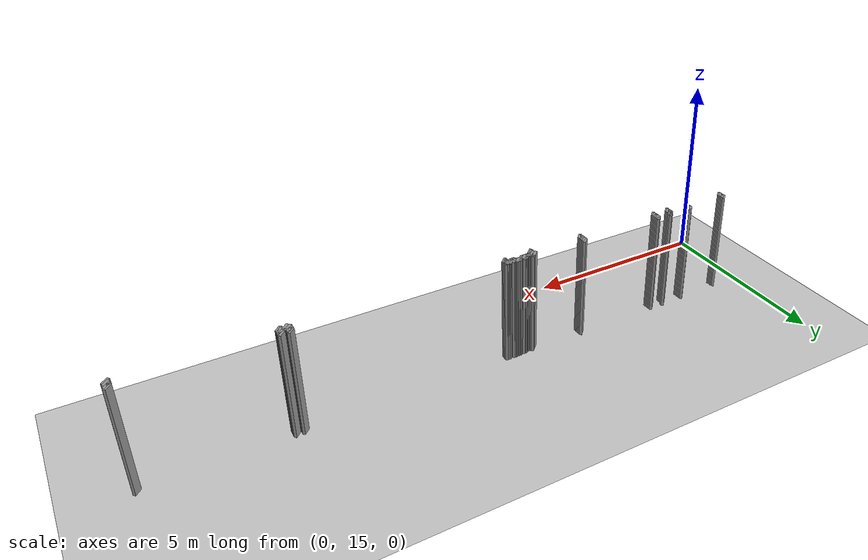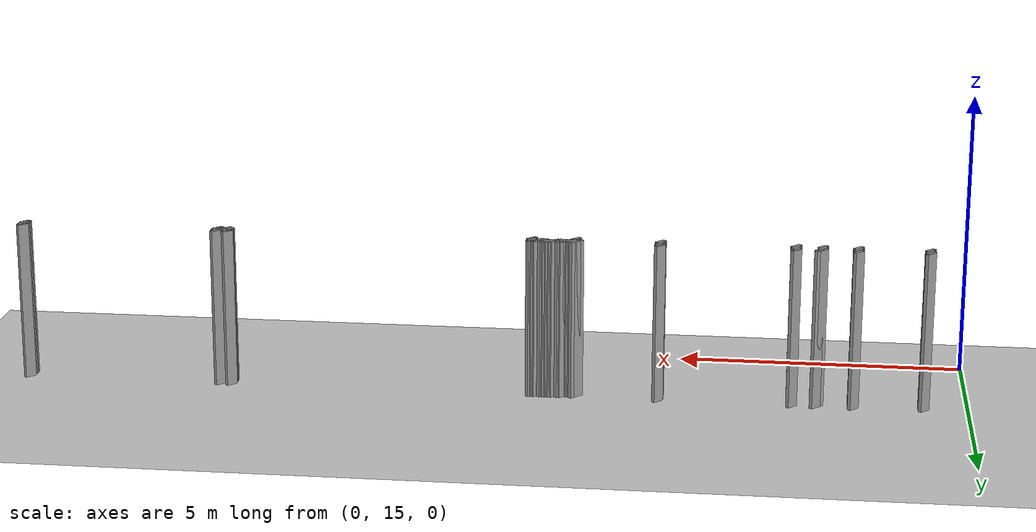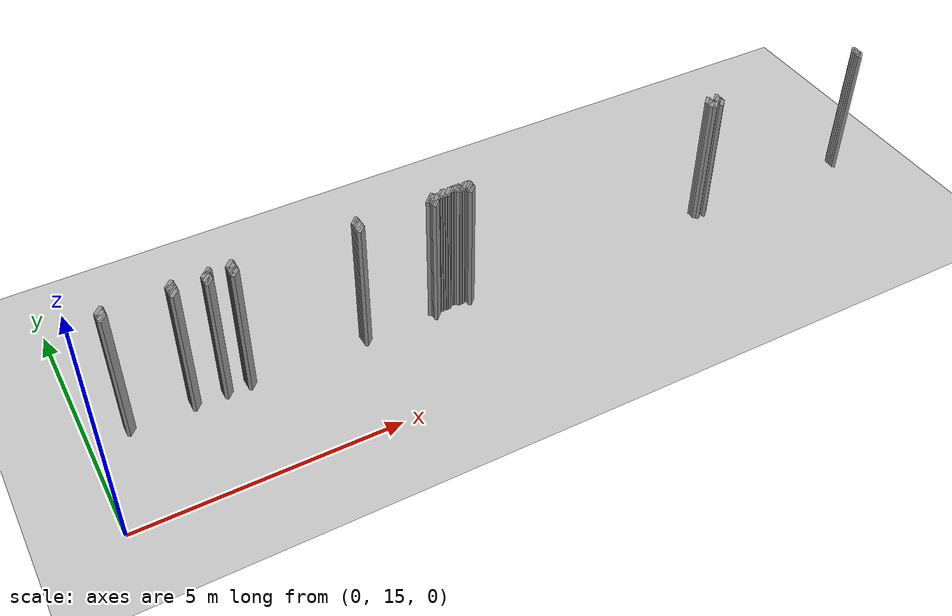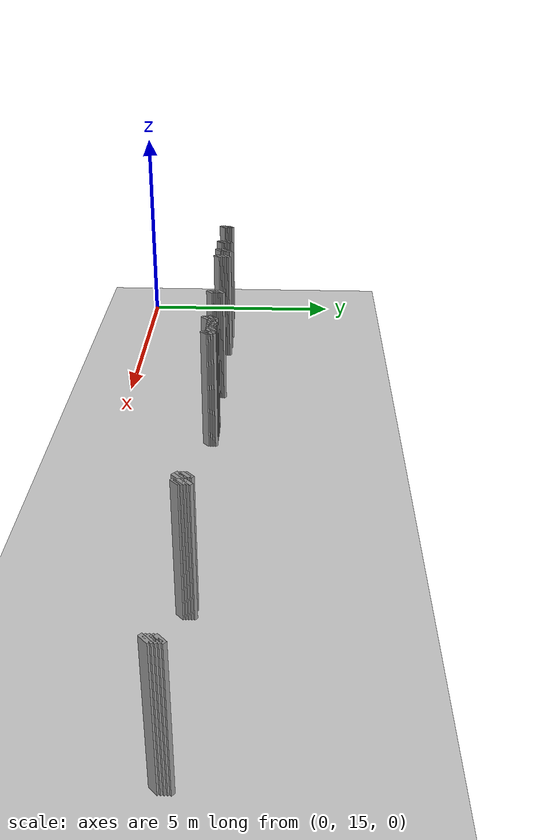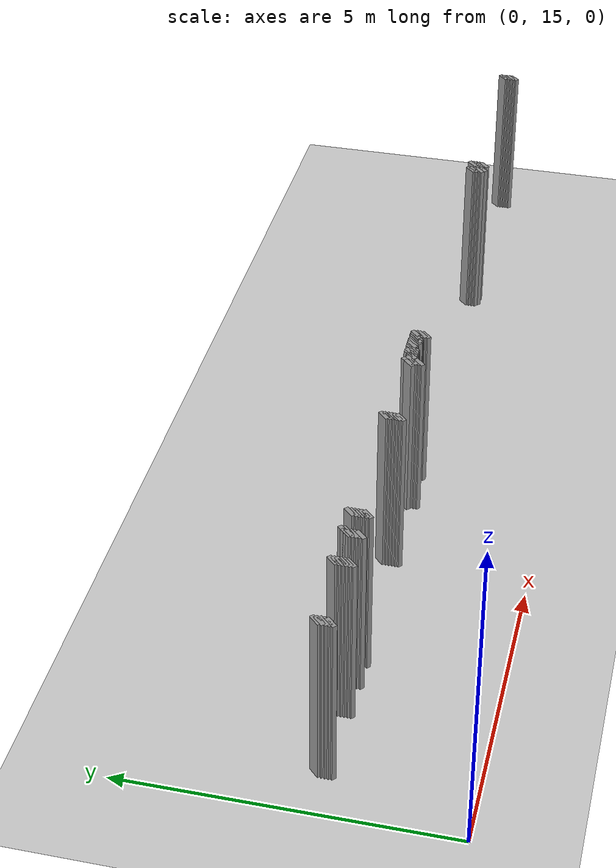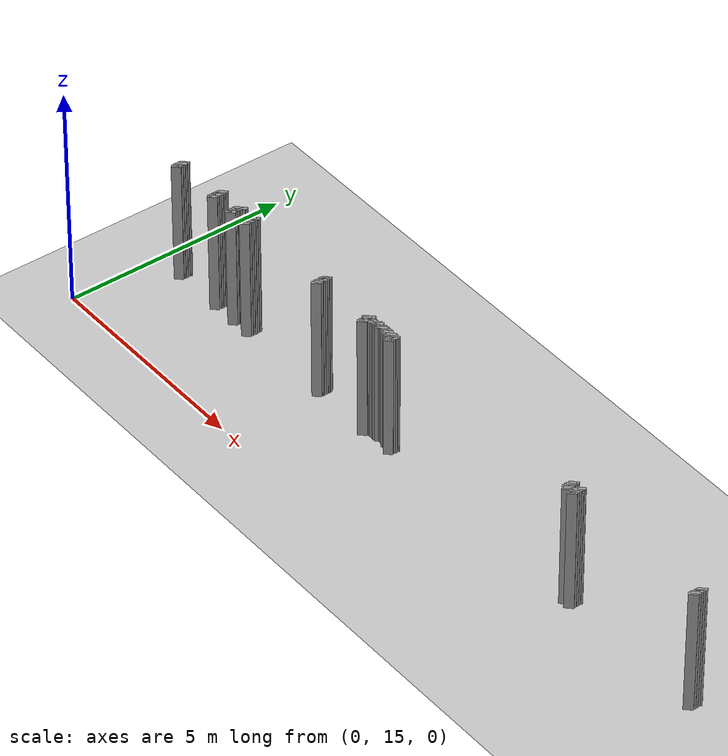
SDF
<sdf version="1.5">
 <world name="default">
  <include><uri>model://ground_plane</uri></include>
  <include><uri>model://sun</uri></include>
  <model name="grey_wall_298">
   <static>1</static>
   <link name="link">
    <pose>1.9500000000000002 17.3  1.4 0 0 -0.7853981633974216</pose>
    <collision name="collision">
     <geometry><box><size>0.07071067811865261 .2  2.8</size></box></geometry>
    </collision>
    <visual name="visual">
     <cast_shadows>0</cast_shadows>
     <geometry><box><size>0.07071067811865261 .2  2.8</size></box></geometry>
     <material>
      <script>
       <uri>model://grey_wall/materials/scripts</uri>
       <uri>model://grey_wall/materials/textures</uri>
       <name>vrc/grey_wall</name>
      </script>
     </material>
    </visual>
   </link>
  </model>
  <model name="grey_wall_299">
   <static>1</static>
   <link name="link">
    <pose>2.6 17.3  1.4 0 0 -0.7853981633974216</pose>
    <collision name="collision">
     <geometry><box><size>0.07071067811865261 .2  2.8</size></box></geometry>
    </collision>
    <visual name="visual">
     <cast_shadows>0</cast_shadows>
     <geometry><box><size>0.07071067811865261 .2  2.8</size></box></geometry>
     <material>
      <script>
       <uri>model://grey_wall/materials/scripts</uri>
       <uri>model://grey_wall/materials/textures</uri>
       <name>vrc/grey_wall</name>
      </script>
     </material>
    </visual>
   </link>
  </model>
  <model name="grey_wall_300">
   <static>1</static>
   <link name="link">
    <pose>3.0 17.3  1.4 0 0 -0.7853981633974216</pose>
    <collision name="collision">
     <geometry><box><size>0.07071067811865261 .2  2.8</size></box></geometry>
    </collision>
    <visual name="visual">
     <cast_shadows>0</cast_shadows>
     <geometry><box><size>0.07071067811865261 .2  2.8</size></box></geometry>
     <material>
      <script>
       <uri>model://grey_wall/materials/scripts</uri>
       <uri>model://grey_wall/materials/textures</uri>
       <name>vrc/grey_wall</name>
      </script>
     </material>
    </visual>
   </link>
  </model>
  <model name="grey_wall_301">
   <static>1</static>
   <link name="link">
    <pose>5.300000000000001 17.3  1.4 0 0 -0.7853981633974128</pose>
    <collision name="collision">
     <geometry><box><size>0.07071067811865325 .2  2.8</size></box></geometry>
    </collision>
    <visual name="visual">
     <cast_shadows>0</cast_shadows>
     <geometry><box><size>0.07071067811865325 .2  2.8</size></box></geometry>
     <material>
      <script>
       <uri>model://grey_wall/materials/scripts</uri>
       <uri>model://grey_wall/materials/textures</uri>
       <name>vrc/grey_wall</name>
      </script>
     </material>
    </visual>
   </link>
  </model>
  <model name="grey_wall_302">
   <static>1</static>
   <link name="link">
    <pose>12.8 17.3  1.4 0 0 -0.7853981633974128</pose>
    <collision name="collision">
     <geometry><box><size>0.07071067811865325 .2  2.8</size></box></geometry>
    </collision>
    <visual name="visual">
     <cast_shadows>0</cast_shadows>
     <geometry><box><size>0.07071067811865325 .2  2.8</size></box></geometry>
     <material>
      <script>
       <uri>model://grey_wall/materials/scripts</uri>
       <uri>model://grey_wall/materials/textures</uri>
       <name>vrc/grey_wall</name>
      </script>
     </material>
    </visual>
   </link>
  </model>
  <model name="grey_wall_303">
   <static>1</static>
   <link name="link">
    <pose>13.0 17.3  1.4 0 0 -0.7853981633974128</pose>
    <collision name="collision">
     <geometry><box><size>0.07071067811865325 .2  2.8</size></box></geometry>
    </collision>
    <visual name="visual">
     <cast_shadows>0</cast_shadows>
     <geometry><box><size>0.07071067811865325 .2  2.8</size></box></geometry>
     <material>
      <script>
       <uri>model://grey_wall/materials/scripts</uri>
       <uri>model://grey_wall/materials/textures</uri>
       <name>vrc/grey_wall</name>
      </script>
     </material>
    </visual>
   </link>
  </model>
  <model name="grey_wall_304">
   <static>1</static>
   <link name="link">
    <pose>16.45 17.3  1.4 0 0 -0.7853981633974483</pose>
    <collision name="collision">
     <geometry><box><size>0.07071067811865074 .2  2.8</size></box></geometry>
    </collision>
    <visual name="visual">
     <cast_shadows>0</cast_shadows>
     <geometry><box><size>0.07071067811865074 .2  2.8</size></box></geometry>
     <material>
      <script>
       <uri>model://grey_wall/materials/scripts</uri>
       <uri>model://grey_wall/materials/textures</uri>
       <name>vrc/grey_wall</name>
      </script>
     </material>
    </visual>
   </link>
  </model>
  <model name="grey_wall_305">
   <static>1</static>
   <link name="link">
    <pose>0.75 17.25  1.4 0 0 -0.7853981633974194</pose>
    <collision name="collision">
     <geometry><box><size>0.07071067811865277 .2  2.8</size></box></geometry>
    </collision>
    <visual name="visual">
     <cast_shadows>0</cast_shadows>
     <geometry><box><size>0.07071067811865277 .2  2.8</size></box></geometry>
     <material>
      <script>
       <uri>model://grey_wall/materials/scripts</uri>
       <uri>model://grey_wall/materials/textures</uri>
       <name>vrc/grey_wall</name>
      </script>
     </material>
    </visual>
   </link>
  </model>
  <model name="grey_wall_306">
   <static>1</static>
   <link name="link">
    <pose>1.9500000000000002 17.25  1.4 0 0 -0.7853981633974216</pose>
    <collision name="collision">
     <geometry><box><size>0.07071067811865261 .2  2.8</size></box></geometry>
    </collision>
    <visual name="visual">
     <cast_shadows>0</cast_shadows>
     <geometry><box><size>0.07071067811865261 .2  2.8</size></box></geometry>
     <material>
      <script>
       <uri>model://grey_wall/materials/scripts</uri>
       <uri>model://grey_wall/materials/textures</uri>
       <name>vrc/grey_wall</name>
      </script>
     </material>
    </visual>
   </link>
  </model>
  <model name="grey_wall_307">
   <static>1</static>
   <link name="link">
    <pose>2.5500000000000003 17.25  1.4 0 0 -0.7853981633974216</pose>
    <collision name="collision">
     <geometry><box><size>0.07071067811865261 .2  2.8</size></box></geometry>
    </collision>
    <visual name="visual">
     <cast_shadows>0</cast_shadows>
     <geometry><box><size>0.07071067811865261 .2  2.8</size></box></geometry>
     <material>
      <script>
       <uri>model://grey_wall/materials/scripts</uri>
       <uri>model://grey_wall/materials/textures</uri>
       <name>vrc/grey_wall</name>
      </script>
     </material>
    </visual>
   </link>
  </model>
  <model name="grey_wall_308">
   <static>1</static>
   <link name="link">
    <pose>2.6 17.25  1.4 0 0 -0.7853981633974216</pose>
    <collision name="collision">
     <geometry><box><size>0.07071067811865261 .2  2.8</size></box></geometry>
    </collision>
    <visual name="visual">
     <cast_shadows>0</cast_shadows>
     <geometry><box><size>0.07071067811865261 .2  2.8</size></box></geometry>
     <material>
      <script>
       <uri>model://grey_wall/materials/scripts</uri>
       <uri>model://grey_wall/materials/textures</uri>
       <name>vrc/grey_wall</name>
      </script>
     </material>
    </visual>
   </link>
  </model>
  <model name="grey_wall_309">
   <static>1</static>
   <link name="link">
    <pose>3.0 17.25  1.4 0 0 -0.7853981633974216</pose>
    <collision name="collision">
     <geometry><box><size>0.07071067811865261 .2  2.8</size></box></geometry>
    </collision>
    <visual name="visual">
     <cast_shadows>0</cast_shadows>
     <geometry><box><size>0.07071067811865261 .2  2.8</size></box></geometry>
     <material>
      <script>
       <uri>model://grey_wall/materials/scripts</uri>
       <uri>model://grey_wall/materials/textures</uri>
       <name>vrc/grey_wall</name>
      </script>
     </material>
    </visual>
   </link>
  </model>
  <model name="grey_wall_310">
   <static>1</static>
   <link name="link">
    <pose>5.300000000000001 17.25  1.4 0 0 -0.7853981633974128</pose>
    <collision name="collision">
     <geometry><box><size>0.07071067811865325 .2  2.8</size></box></geometry>
    </collision>
    <visual name="visual">
     <cast_shadows>0</cast_shadows>
     <geometry><box><size>0.07071067811865325 .2  2.8</size></box></geometry>
     <material>
      <script>
       <uri>model://grey_wall/materials/scripts</uri>
       <uri>model://grey_wall/materials/textures</uri>
       <name>vrc/grey_wall</name>
      </script>
     </material>
    </visual>
   </link>
  </model>
  <model name="grey_wall_311">
   <static>1</static>
   <link name="link">
    <pose>6.75 17.25  1.4 0 0 -0.7853981633974128</pose>
    <collision name="collision">
     <geometry><box><size>0.07071067811865325 .2  2.8</size></box></geometry>
    </collision>
    <visual name="visual">
     <cast_shadows>0</cast_shadows>
     <geometry><box><size>0.07071067811865325 .2  2.8</size></box></geometry>
     <material>
      <script>
       <uri>model://grey_wall/materials/scripts</uri>
       <uri>model://grey_wall/materials/textures</uri>
       <name>vrc/grey_wall</name>
      </script>
     </material>
    </visual>
   </link>
  </model>
  <model name="grey_wall_312">
   <static>1</static>
   <link name="link">
    <pose>6.95 17.25  1.4 0 0 -0.7853981633974128</pose>
    <collision name="collision">
     <geometry><box><size>0.07071067811865325 .2  2.8</size></box></geometry>
    </collision>
    <visual name="visual">
     <cast_shadows>0</cast_shadows>
     <geometry><box><size>0.07071067811865325 .2  2.8</size></box></geometry>
     <material>
      <script>
       <uri>model://grey_wall/materials/scripts</uri>
       <uri>model://grey_wall/materials/textures</uri>
       <name>vrc/grey_wall</name>
      </script>
     </material>
    </visual>
   </link>
  </model>
  <model name="grey_wall_313">
   <static>1</static>
   <link name="link">
    <pose>7.0 17.25  1.4 0 0 -0.7853981633974128</pose>
    <collision name="collision">
     <geometry><box><size>0.07071067811865325 .2  2.8</size></box></geometry>
    </collision>
    <visual name="visual">
     <cast_shadows>0</cast_shadows>
     <geometry><box><size>0.07071067811865325 .2  2.8</size></box></geometry>
     <material>
      <script>
       <uri>model://grey_wall/materials/scripts</uri>
       <uri>model://grey_wall/materials/textures</uri>
       <name>vrc/grey_wall</name>
      </script>
     </material>
    </visual>
   </link>
  </model>
  <model name="grey_wall_314">
   <static>1</static>
   <link name="link">
    <pose>7.1000000000000005 17.25  1.4 0 0 -0.7853981633974128</pose>
    <collision name="collision">
     <geometry><box><size>0.07071067811865325 .2  2.8</size></box></geometry>
    </collision>
    <visual name="visual">
     <cast_shadows>0</cast_shadows>
     <geometry><box><size>0.07071067811865325 .2  2.8</size></box></geometry>
     <material>
      <script>
       <uri>model://grey_wall/materials/scripts</uri>
       <uri>model://grey_wall/materials/textures</uri>
       <name>vrc/grey_wall</name>
      </script>
     </material>
    </visual>
   </link>
  </model>
  <model name="grey_wall_315">
   <static>1</static>
   <link name="link">
    <pose>7.15 17.25  1.4 0 0 -0.7853981633974128</pose>
    <collision name="collision">
     <geometry><box><size>0.07071067811865325 .2  2.8</size></box></geometry>
    </collision>
    <visual name="visual">
     <cast_shadows>0</cast_shadows>
     <geometry><box><size>0.07071067811865325 .2  2.8</size></box></geometry>
     <material>
      <script>
       <uri>model://grey_wall/materials/scripts</uri>
       <uri>model://grey_wall/materials/textures</uri>
       <name>vrc/grey_wall</name>
      </script>
     </material>
    </visual>
   </link>
  </model>
  <model name="grey_wall_316">
   <static>1</static>
   <link name="link">
    <pose>7.2 17.25  1.4 0 0 -0.7853981633974128</pose>
    <collision name="collision">
     <geometry><box><size>0.07071067811865325 .2  2.8</size></box></geometry>
    </collision>
    <visual name="visual">
     <cast_shadows>0</cast_shadows>
     <geometry><box><size>0.07071067811865325 .2  2.8</size></box></geometry>
     <material>
      <script>
       <uri>model://grey_wall/materials/scripts</uri>
       <uri>model://grey_wall/materials/textures</uri>
       <name>vrc/grey_wall</name>
      </script>
     </material>
    </visual>
   </link>
  </model>
  <model name="grey_wall_317">
   <static>1</static>
   <link name="link">
    <pose>7.25 17.25  1.4 0 0 -0.7853981633974128</pose>
    <collision name="collision">
     <geometry><box><size>0.07071067811865325 .2  2.8</size></box></geometry>
    </collision>
    <visual name="visual">
     <cast_shadows>0</cast_shadows>
     <geometry><box><size>0.07071067811865325 .2  2.8</size></box></geometry>
     <material>
      <script>
       <uri>model://grey_wall/materials/scripts</uri>
       <uri>model://grey_wall/materials/textures</uri>
       <name>vrc/grey_wall</name>
      </script>
     </material>
    </visual>
   </link>
  </model>
  <model name="grey_wall_318">
   <static>1</static>
   <link name="link">
    <pose>7.300000000000001 17.25  1.4 0 0 -0.7853981633974128</pose>
    <collision name="collision">
     <geometry><box><size>0.07071067811865325 .2  2.8</size></box></geometry>
    </collision>
    <visual name="visual">
     <cast_shadows>0</cast_shadows>
     <geometry><box><size>0.07071067811865325 .2  2.8</size></box></geometry>
     <material>
      <script>
       <uri>model://grey_wall/materials/scripts</uri>
       <uri>model://grey_wall/materials/textures</uri>
       <name>vrc/grey_wall</name>
      </script>
     </material>
    </visual>
   </link>
  </model>
  <model name="grey_wall_319">
   <static>1</static>
   <link name="link">
    <pose>7.4 17.25  1.4 0 0 -0.7853981633974128</pose>
    <collision name="collision">
     <geometry><box><size>0.07071067811865325 .2  2.8</size></box></geometry>
    </collision>
    <visual name="visual">
     <cast_shadows>0</cast_shadows>
     <geometry><box><size>0.07071067811865325 .2  2.8</size></box></geometry>
     <material>
      <script>
       <uri>model://grey_wall/materials/scripts</uri>
       <uri>model://grey_wall/materials/textures</uri>
       <name>vrc/grey_wall</name>
      </script>
     </material>
    </visual>
   </link>
  </model>
  <model name="grey_wall_320">
   <static>1</static>
   <link name="link">
    <pose>7.45 17.25  1.4 0 0 -0.7853981633974128</pose>
    <collision name="collision">
     <geometry><box><size>0.07071067811865325 .2  2.8</size></box></geometry>
    </collision>
    <visual name="visual">
     <cast_shadows>0</cast_shadows>
     <geometry><box><size>0.07071067811865325 .2  2.8</size></box></geometry>
     <material>
      <script>
       <uri>model://grey_wall/materials/scripts</uri>
       <uri>model://grey_wall/materials/textures</uri>
       <name>vrc/grey_wall</name>
      </script>
     </material>
    </visual>
   </link>
  </model>
  <model name="grey_wall_321">
   <static>1</static>
   <link name="link">
    <pose>7.5 17.25  1.4 0 0 -0.7853981633974128</pose>
    <collision name="collision">
     <geometry><box><size>0.07071067811865325 .2  2.8</size></box></geometry>
    </collision>
    <visual name="visual">
     <cast_shadows>0</cast_shadows>
     <geometry><box><size>0.07071067811865325 .2  2.8</size></box></geometry>
     <material>
      <script>
       <uri>model://grey_wall/materials/scripts</uri>
       <uri>model://grey_wall/materials/textures</uri>
       <name>vrc/grey_wall</name>
      </script>
     </material>
    </visual>
   </link>
  </model>
  <model name="grey_wall_322">
   <static>1</static>
   <link name="link">
    <pose>12.8 17.25  1.4 0 0 -0.7853981633974128</pose>
    <collision name="collision">
     <geometry><box><size>0.07071067811865325 .2  2.8</size></box></geometry>
    </collision>
    <visual name="visual">
     <cast_shadows>0</cast_shadows>
     <geometry><box><size>0.07071067811865325 .2  2.8</size></box></geometry>
     <material>
      <script>
       <uri>model://grey_wall/materials/scripts</uri>
       <uri>model://grey_wall/materials/textures</uri>
       <name>vrc/grey_wall</name>
      </script>
     </material>
    </visual>
   </link>
  </model>
  <model name="grey_wall_323">
   <static>1</static>
   <link name="link">
    <pose>13.0 17.25  1.4 0 0 -0.7853981633974128</pose>
    <collision name="collision">
     <geometry><box><size>0.07071067811865325 .2  2.8</size></box></geometry>
    </collision>
    <visual name="visual">
     <cast_shadows>0</cast_shadows>
     <geometry><box><size>0.07071067811865325 .2  2.8</size></box></geometry>
     <material>
      <script>
       <uri>model://grey_wall/materials/scripts</uri>
       <uri>model://grey_wall/materials/textures</uri>
       <name>vrc/grey_wall</name>
      </script>
     </material>
    </visual>
   </link>
  </model>
  <model name="grey_wall_324">
   <static>1</static>
   <link name="link">
    <pose>16.45 17.25  1.4 0 0 -0.7853981633974483</pose>
    <collision name="collision">
     <geometry><box><size>0.07071067811865074 .2  2.8</size></box></geometry>
    </collision>
    <visual name="visual">
     <cast_shadows>0</cast_shadows>
     <geometry><box><size>0.07071067811865074 .2  2.8</size></box></geometry>
     <material>
      <script>
       <uri>model://grey_wall/materials/scripts</uri>
       <uri>model://grey_wall/materials/textures</uri>
       <name>vrc/grey_wall</name>
      </script>
     </material>
    </visual>
   </link>
  </model>
  <model name="grey_wall_325">
   <static>1</static>
   <link name="link">
    <pose>0.75 17.2  1.4 0 0 -0.7853981633974194</pose>
    <collision name="collision">
     <geometry><box><size>0.07071067811865277 .2  2.8</size></box></geometry>
    </collision>
    <visual name="visual">
     <cast_shadows>0</cast_shadows>
     <geometry><box><size>0.07071067811865277 .2  2.8</size></box></geometry>
     <material>
      <script>
       <uri>model://grey_wall/materials/scripts</uri>
       <uri>model://grey_wall/materials/textures</uri>
       <name>vrc/grey_wall</name>
      </script>
     </material>
    </visual>
   </link>
  </model>
  <model name="grey_wall_326">
   <static>1</static>
   <link name="link">
    <pose>1.9500000000000002 17.2  1.4 0 0 -0.7853981633974216</pose>
    <collision name="collision">
     <geometry><box><size>0.07071067811865261 .2  2.8</size></box></geometry>
    </collision>
    <visual name="visual">
     <cast_shadows>0</cast_shadows>
     <geometry><box><size>0.07071067811865261 .2  2.8</size></box></geometry>
     <material>
      <script>
       <uri>model://grey_wall/materials/scripts</uri>
       <uri>model://grey_wall/materials/textures</uri>
       <name>vrc/grey_wall</name>
      </script>
     </material>
    </visual>
   </link>
  </model>
  <model name="grey_wall_327">
   <static>1</static>
   <link name="link">
    <pose>2.5500000000000003 17.2  1.4 0 0 -0.7853981633974216</pose>
    <collision name="collision">
     <geometry><box><size>0.07071067811865261 .2  2.8</size></box></geometry>
    </collision>
    <visual name="visual">
     <cast_shadows>0</cast_shadows>
     <geometry><box><size>0.07071067811865261 .2  2.8</size></box></geometry>
     <material>
      <script>
       <uri>model://grey_wall/materials/scripts</uri>
       <uri>model://grey_wall/materials/textures</uri>
       <name>vrc/grey_wall</name>
      </script>
     </material>
    </visual>
   </link>
  </model>
  <model name="grey_wall_328">
   <static>1</static>
   <link name="link">
    <pose>3.0 17.2  1.4 0 0 -0.7853981633974216</pose>
    <collision name="collision">
     <geometry><box><size>0.07071067811865261 .2  2.8</size></box></geometry>
    </collision>
    <visual name="visual">
     <cast_shadows>0</cast_shadows>
     <geometry><box><size>0.07071067811865261 .2  2.8</size></box></geometry>
     <material>
      <script>
       <uri>model://grey_wall/materials/scripts</uri>
       <uri>model://grey_wall/materials/textures</uri>
       <name>vrc/grey_wall</name>
      </script>
     </material>
    </visual>
   </link>
  </model>
  <model name="grey_wall_329">
   <static>1</static>
   <link name="link">
    <pose>5.300000000000001 17.2  1.4 0 0 -0.7853981633974128</pose>
    <collision name="collision">
     <geometry><box><size>0.07071067811865325 .2  2.8</size></box></geometry>
    </collision>
    <visual name="visual">
     <cast_shadows>0</cast_shadows>
     <geometry><box><size>0.07071067811865325 .2  2.8</size></box></geometry>
     <material>
      <script>
       <uri>model://grey_wall/materials/scripts</uri>
       <uri>model://grey_wall/materials/textures</uri>
       <name>vrc/grey_wall</name>
      </script>
     </material>
    </visual>
   </link>
  </model>
  <model name="grey_wall_330">
   <static>1</static>
   <link name="link">
    <pose>6.7 17.2  1.4 0 0 -0.7853981633974128</pose>
    <collision name="collision">
     <geometry><box><size>0.07071067811865325 .2  2.8</size></box></geometry>
    </collision>
    <visual name="visual">
     <cast_shadows>0</cast_shadows>
     <geometry><box><size>0.07071067811865325 .2  2.8</size></box></geometry>
     <material>
      <script>
       <uri>model://grey_wall/materials/scripts</uri>
       <uri>model://grey_wall/materials/textures</uri>
       <name>vrc/grey_wall</name>
      </script>
     </material>
    </visual>
   </link>
  </model>
  <model name="grey_wall_331">
   <static>1</static>
   <link name="link">
    <pose>6.75 17.2  1.4 0 0 -0.7853981633974128</pose>
    <collision name="collision">
     <geometry><box><size>0.07071067811865325 .2  2.8</size></box></geometry>
    </collision>
    <visual name="visual">
     <cast_shadows>0</cast_shadows>
     <geometry><box><size>0.07071067811865325 .2  2.8</size></box></geometry>
     <material>
      <script>
       <uri>model://grey_wall/materials/scripts</uri>
       <uri>model://grey_wall/materials/textures</uri>
       <name>vrc/grey_wall</name>
      </script>
     </material>
    </visual>
   </link>
  </model>
  <model name="grey_wall_332">
   <static>1</static>
   <link name="link">
    <pose>6.800000000000001 17.2  1.4 0 0 -0.7853981633974128</pose>
    <collision name="collision">
     <geometry><box><size>0.07071067811865325 .2  2.8</size></box></geometry>
    </collision>
    <visual name="visual">
     <cast_shadows>0</cast_shadows>
     <geometry><box><size>0.07071067811865325 .2  2.8</size></box></geometry>
     <material>
      <script>
       <uri>model://grey_wall/materials/scripts</uri>
       <uri>model://grey_wall/materials/textures</uri>
       <name>vrc/grey_wall</name>
      </script>
     </material>
    </visual>
   </link>
  </model>
  <model name="grey_wall_333">
   <static>1</static>
   <link name="link">
    <pose>6.8500000000000005 17.2  1.4 0 0 -0.7853981633974128</pose>
    <collision name="collision">
     <geometry><box><size>0.07071067811865325 .2  2.8</size></box></geometry>
    </collision>
    <visual name="visual">
     <cast_shadows>0</cast_shadows>
     <geometry><box><size>0.07071067811865325 .2  2.8</size></box></geometry>
     <material>
      <script>
       <uri>model://grey_wall/materials/scripts</uri>
       <uri>model://grey_wall/materials/textures</uri>
       <name>vrc/grey_wall</name>
      </script>
     </material>
    </visual>
   </link>
  </model>
  <model name="grey_wall_334">
   <static>1</static>
   <link name="link">
    <pose>6.9 17.2  1.4 0 0 -0.7853981633974128</pose>
    <collision name="collision">
     <geometry><box><size>0.07071067811865325 .2  2.8</size></box></geometry>
    </collision>
    <visual name="visual">
     <cast_shadows>0</cast_shadows>
     <geometry><box><size>0.07071067811865325 .2  2.8</size></box></geometry>
     <material>
      <script>
       <uri>model://grey_wall/materials/scripts</uri>
       <uri>model://grey_wall/materials/textures</uri>
       <name>vrc/grey_wall</name>
      </script>
     </material>
    </visual>
   </link>
  </model>
  <model name="grey_wall_335">
   <static>1</static>
   <link name="link">
    <pose>6.95 17.2  1.4 0 0 -0.7853981633974128</pose>
    <collision name="collision">
     <geometry><box><size>0.07071067811865325 .2  2.8</size></box></geometry>
    </collision>
    <visual name="visual">
     <cast_shadows>0</cast_shadows>
     <geometry><box><size>0.07071067811865325 .2  2.8</size></box></geometry>
     <material>
      <script>
       <uri>model://grey_wall/materials/scripts</uri>
       <uri>model://grey_wall/materials/textures</uri>
       <name>vrc/grey_wall</name>
      </script>
     </material>
    </visual>
   </link>
  </model>
  <model name="grey_wall_336">
   <static>1</static>
   <link name="link">
    <pose>7.0 17.2  1.4 0 0 -0.7853981633974128</pose>
    <collision name="collision">
     <geometry><box><size>0.07071067811865325 .2  2.8</size></box></geometry>
    </collision>
    <visual name="visual">
     <cast_shadows>0</cast_shadows>
     <geometry><box><size>0.07071067811865325 .2  2.8</size></box></geometry>
     <material>
      <script>
       <uri>model://grey_wall/materials/scripts</uri>
       <uri>model://grey_wall/materials/textures</uri>
       <name>vrc/grey_wall</name>
      </script>
     </material>
    </visual>
   </link>
  </model>
  <model name="grey_wall_337">
   <static>1</static>
   <link name="link">
    <pose>7.050000000000001 17.2  1.4 0 0 -0.7853981633974128</pose>
    <collision name="collision">
     <geometry><box><size>0.07071067811865325 .2  2.8</size></box></geometry>
    </collision>
    <visual name="visual">
     <cast_shadows>0</cast_shadows>
     <geometry><box><size>0.07071067811865325 .2  2.8</size></box></geometry>
     <material>
      <script>
       <uri>model://grey_wall/materials/scripts</uri>
       <uri>model://grey_wall/materials/textures</uri>
       <name>vrc/grey_wall</name>
      </script>
     </material>
    </visual>
   </link>
  </model>
  <model name="grey_wall_338">
   <static>1</static>
   <link name="link">
    <pose>7.1000000000000005 17.2  1.4 0 0 -0.7853981633974128</pose>
    <collision name="collision">
     <geometry><box><size>0.07071067811865325 .2  2.8</size></box></geometry>
    </collision>
    <visual name="visual">
     <cast_shadows>0</cast_shadows>
     <geometry><box><size>0.07071067811865325 .2  2.8</size></box></geometry>
     <material>
      <script>
       <uri>model://grey_wall/materials/scripts</uri>
       <uri>model://grey_wall/materials/textures</uri>
       <name>vrc/grey_wall</name>
      </script>
     </material>
    </visual>
   </link>
  </model>
  <model name="grey_wall_339">
   <static>1</static>
   <link name="link">
    <pose>7.300000000000001 17.2  1.4 0 0 -0.7853981633974128</pose>
    <collision name="collision">
     <geometry><box><size>0.07071067811865325 .2  2.8</size></box></geometry>
    </collision>
    <visual name="visual">
     <cast_shadows>0</cast_shadows>
     <geometry><box><size>0.07071067811865325 .2  2.8</size></box></geometry>
     <material>
      <script>
       <uri>model://grey_wall/materials/scripts</uri>
       <uri>model://grey_wall/materials/textures</uri>
       <name>vrc/grey_wall</name>
      </script>
     </material>
    </visual>
   </link>
  </model>
  <model name="grey_wall_340">
   <static>1</static>
   <link name="link">
    <pose>7.3500000000000005 17.2  1.4 0 0 -0.7853981633974128</pose>
    <collision name="collision">
     <geometry><box><size>0.07071067811865325 .2  2.8</size></box></geometry>
    </collision>
    <visual name="visual">
     <cast_shadows>0</cast_shadows>
     <geometry><box><size>0.07071067811865325 .2  2.8</size></box></geometry>
     <material>
      <script>
       <uri>model://grey_wall/materials/scripts</uri>
       <uri>model://grey_wall/materials/textures</uri>
       <name>vrc/grey_wall</name>
      </script>
     </material>
    </visual>
   </link>
  </model>
  <model name="grey_wall_341">
   <static>1</static>
   <link name="link">
    <pose>7.4 17.2  1.4 0 0 -0.7853981633974128</pose>
    <collision name="collision">
     <geometry><box><size>0.07071067811865325 .2  2.8</size></box></geometry>
    </collision>
    <visual name="visual">
     <cast_shadows>0</cast_shadows>
     <geometry><box><size>0.07071067811865325 .2  2.8</size></box></geometry>
     <material>
      <script>
       <uri>model://grey_wall/materials/scripts</uri>
       <uri>model://grey_wall/materials/textures</uri>
       <name>vrc/grey_wall</name>
      </script>
     </material>
    </visual>
   </link>
  </model>
  <model name="grey_wall_342">
   <static>1</static>
   <link name="link">
    <pose>7.5 17.2  1.4 0 0 -0.7853981633974128</pose>
    <collision name="collision">
     <geometry><box><size>0.07071067811865325 .2  2.8</size></box></geometry>
    </collision>
    <visual name="visual">
     <cast_shadows>0</cast_shadows>
     <geometry><box><size>0.07071067811865325 .2  2.8</size></box></geometry>
     <material>
      <script>
       <uri>model://grey_wall/materials/scripts</uri>
       <uri>model://grey_wall/materials/textures</uri>
       <name>vrc/grey_wall</name>
      </script>
     </material>
    </visual>
   </link>
  </model>
  <model name="grey_wall_343">
   <static>1</static>
   <link name="link">
    <pose>12.8 17.2  1.4 0 0 -0.7853981633974128</pose>
    <collision name="collision">
     <geometry><box><size>0.07071067811865325 .2  2.8</size></box></geometry>
    </collision>
    <visual name="visual">
     <cast_shadows>0</cast_shadows>
     <geometry><box><size>0.07071067811865325 .2  2.8</size></box></geometry>
     <material>
      <script>
       <uri>model://grey_wall/materials/scripts</uri>
       <uri>model://grey_wall/materials/textures</uri>
       <name>vrc/grey_wall</name>
      </script>
     </material>
    </visual>
   </link>
  </model>
  <model name="grey_wall_344">
   <static>1</static>
   <link name="link">
    <pose>13.0 17.2  1.4 0 0 -0.7853981633974128</pose>
    <collision name="collision">
     <geometry><box><size>0.07071067811865325 .2  2.8</size></box></geometry>
    </collision>
    <visual name="visual">
     <cast_shadows>0</cast_shadows>
     <geometry><box><size>0.07071067811865325 .2  2.8</size></box></geometry>
     <material>
      <script>
       <uri>model://grey_wall/materials/scripts</uri>
       <uri>model://grey_wall/materials/textures</uri>
       <name>vrc/grey_wall</name>
      </script>
     </material>
    </visual>
   </link>
  </model>
  <model name="grey_wall_345">
   <static>1</static>
   <link name="link">
    <pose>16.45 17.2  1.4 0 0 -0.7853981633974483</pose>
    <collision name="collision">
     <geometry><box><size>0.07071067811865074 .2  2.8</size></box></geometry>
    </collision>
    <visual name="visual">
     <cast_shadows>0</cast_shadows>
     <geometry><box><size>0.07071067811865074 .2  2.8</size></box></geometry>
     <material>
      <script>
       <uri>model://grey_wall/materials/scripts</uri>
       <uri>model://grey_wall/materials/textures</uri>
       <name>vrc/grey_wall</name>
      </script>
     </material>
    </visual>
   </link>
  </model>
  <model name="grey_wall_346">
   <static>1</static>
   <link name="link">
    <pose>0.75 17.150000000000002  1.4 0 0 -0.7853981633974194</pose>
    <collision name="collision">
     <geometry><box><size>0.07071067811865277 .2  2.8</size></box></geometry>
    </collision>
    <visual name="visual">
     <cast_shadows>0</cast_shadows>
     <geometry><box><size>0.07071067811865277 .2  2.8</size></box></geometry>
     <material>
      <script>
       <uri>model://grey_wall/materials/scripts</uri>
       <uri>model://grey_wall/materials/textures</uri>
       <name>vrc/grey_wall</name>
      </script>
     </material>
    </visual>
   </link>
  </model>
  <model name="grey_wall_347">
   <static>1</static>
   <link name="link">
    <pose>1.9500000000000002 17.150000000000002  1.4 0 0 -0.7853981633974216</pose>
    <collision name="collision">
     <geometry><box><size>0.07071067811865261 .2  2.8</size></box></geometry>
    </collision>
    <visual name="visual">
     <cast_shadows>0</cast_shadows>
     <geometry><box><size>0.07071067811865261 .2  2.8</size></box></geometry>
     <material>
      <script>
       <uri>model://grey_wall/materials/scripts</uri>
       <uri>model://grey_wall/materials/textures</uri>
       <name>vrc/grey_wall</name>
      </script>
     </material>
    </visual>
   </link>
  </model>
  <model name="grey_wall_348">
   <static>1</static>
   <link name="link">
    <pose>2.5500000000000003 17.150000000000002  1.4 0 0 -0.7853981633974216</pose>
    <collision name="collision">
     <geometry><box><size>0.07071067811865261 .2  2.8</size></box></geometry>
    </collision>
    <visual name="visual">
     <cast_shadows>0</cast_shadows>
     <geometry><box><size>0.07071067811865261 .2  2.8</size></box></geometry>
     <material>
      <script>
       <uri>model://grey_wall/materials/scripts</uri>
       <uri>model://grey_wall/materials/textures</uri>
       <name>vrc/grey_wall</name>
      </script>
     </material>
    </visual>
   </link>
  </model>
  <model name="grey_wall_349">
   <static>1</static>
   <link name="link">
    <pose>3.0 17.150000000000002  1.4 0 0 -0.7853981633974216</pose>
    <collision name="collision">
     <geometry><box><size>0.07071067811865261 .2  2.8</size></box></geometry>
    </collision>
    <visual name="visual">
     <cast_shadows>0</cast_shadows>
     <geometry><box><size>0.07071067811865261 .2  2.8</size></box></geometry>
     <material>
      <script>
       <uri>model://grey_wall/materials/scripts</uri>
       <uri>model://grey_wall/materials/textures</uri>
       <name>vrc/grey_wall</name>
      </script>
     </material>
    </visual>
   </link>
  </model>
  <model name="grey_wall_350">
   <static>1</static>
   <link name="link">
    <pose>5.300000000000001 17.150000000000002  1.4 0 0 -0.7853981633974128</pose>
    <collision name="collision">
     <geometry><box><size>0.07071067811865325 .2  2.8</size></box></geometry>
    </collision>
    <visual name="visual">
     <cast_shadows>0</cast_shadows>
     <geometry><box><size>0.07071067811865325 .2  2.8</size></box></geometry>
     <material>
      <script>
       <uri>model://grey_wall/materials/scripts</uri>
       <uri>model://grey_wall/materials/textures</uri>
       <name>vrc/grey_wall</name>
      </script>
     </material>
    </visual>
   </link>
  </model>
  <model name="grey_wall_351">
   <static>1</static>
   <link name="link">
    <pose>6.75 17.150000000000002  1.4 0 0 -0.7853981633974128</pose>
    <collision name="collision">
     <geometry><box><size>0.07071067811865325 .2  2.8</size></box></geometry>
    </collision>
    <visual name="visual">
     <cast_shadows>0</cast_shadows>
     <geometry><box><size>0.07071067811865325 .2  2.8</size></box></geometry>
     <material>
      <script>
       <uri>model://grey_wall/materials/scripts</uri>
       <uri>model://grey_wall/materials/textures</uri>
       <name>vrc/grey_wall</name>
      </script>
     </material>
    </visual>
   </link>
  </model>
  <model name="grey_wall_352">
   <static>1</static>
   <link name="link">
    <pose>7.5 17.150000000000002  1.4 0 0 -0.7853981633974128</pose>
    <collision name="collision">
     <geometry><box><size>0.07071067811865325 .2  2.8</size></box></geometry>
    </collision>
    <visual name="visual">
     <cast_shadows>0</cast_shadows>
     <geometry><box><size>0.07071067811865325 .2  2.8</size></box></geometry>
     <material>
      <script>
       <uri>model://grey_wall/materials/scripts</uri>
       <uri>model://grey_wall/materials/textures</uri>
       <name>vrc/grey_wall</name>
      </script>
     </material>
    </visual>
   </link>
  </model>
  <model name="grey_wall_353">
   <static>1</static>
   <link name="link">
    <pose>12.8 17.150000000000002  1.4 0 0 -0.7853981633974128</pose>
    <collision name="collision">
     <geometry><box><size>0.07071067811865325 .2  2.8</size></box></geometry>
    </collision>
    <visual name="visual">
     <cast_shadows>0</cast_shadows>
     <geometry><box><size>0.07071067811865325 .2  2.8</size></box></geometry>
     <material>
      <script>
       <uri>model://grey_wall/materials/scripts</uri>
       <uri>model://grey_wall/materials/textures</uri>
       <name>vrc/grey_wall</name>
      </script>
     </material>
    </visual>
   </link>
  </model>
  <model name="grey_wall_354">
   <static>1</static>
   <link name="link">
    <pose>12.850000000000001 17.150000000000002  1.4 0 0 -0.7853981633974128</pose>
    <collision name="collision">
     <geometry><box><size>0.07071067811865325 .2  2.8</size></box></geometry>
    </collision>
    <visual name="visual">
     <cast_shadows>0</cast_shadows>
     <geometry><box><size>0.07071067811865325 .2  2.8</size></box></geometry>
     <material>
      <script>
       <uri>model://grey_wall/materials/scripts</uri>
       <uri>model://grey_wall/materials/textures</uri>
       <name>vrc/grey_wall</name>
      </script>
     </material>
    </visual>
   </link>
  </model>
  <model name="grey_wall_355">
   <static>1</static>
   <link name="link">
    <pose>13.0 17.150000000000002  1.4 0 0 -0.7853981633974128</pose>
    <collision name="collision">
     <geometry><box><size>0.07071067811865325 .2  2.8</size></box></geometry>
    </collision>
    <visual name="visual">
     <cast_shadows>0</cast_shadows>
     <geometry><box><size>0.07071067811865325 .2  2.8</size></box></geometry>
     <material>
      <script>
       <uri>model://grey_wall/materials/scripts</uri>
       <uri>model://grey_wall/materials/textures</uri>
       <name>vrc/grey_wall</name>
      </script>
     </material>
    </visual>
   </link>
  </model>
  <model name="grey_wall_356">
   <static>1</static>
   <link name="link">
    <pose>16.45 17.150000000000002  1.4 0 0 -0.7853981633974483</pose>
    <collision name="collision">
     <geometry><box><size>0.07071067811865074 .2  2.8</size></box></geometry>
    </collision>
    <visual name="visual">
     <cast_shadows>0</cast_shadows>
     <geometry><box><size>0.07071067811865074 .2  2.8</size></box></geometry>
     <material>
      <script>
       <uri>model://grey_wall/materials/scripts</uri>
       <uri>model://grey_wall/materials/textures</uri>
       <name>vrc/grey_wall</name>
      </script>
     </material>
    </visual>
   </link>
  </model>
  <model name="grey_wall_357">
   <static>1</static>
   <link name="link">
    <pose>0.75 17.1  1.4 0 0 -0.7853981633974194</pose>
    <collision name="collision">
     <geometry><box><size>0.07071067811865277 .2  2.8</size></box></geometry>
    </collision>
    <visual name="visual">
     <cast_shadows>0</cast_shadows>
     <geometry><box><size>0.07071067811865277 .2  2.8</size></box></geometry>
     <material>
      <script>
       <uri>model://grey_wall/materials/scripts</uri>
       <uri>model://grey_wall/materials/textures</uri>
       <name>vrc/grey_wall</name>
      </script>
     </material>
    </visual>
   </link>
  </model>
  <model name="grey_wall_358">
   <static>1</static>
   <link name="link">
    <pose>1.9500000000000002 17.1  1.4 0 0 -0.7853981633974216</pose>
    <collision name="collision">
     <geometry><box><size>0.07071067811865261 .2  2.8</size></box></geometry>
    </collision>
    <visual name="visual">
     <cast_shadows>0</cast_shadows>
     <geometry><box><size>0.07071067811865261 .2  2.8</size></box></geometry>
     <material>
      <script>
       <uri>model://grey_wall/materials/scripts</uri>
       <uri>model://grey_wall/materials/textures</uri>
       <name>vrc/grey_wall</name>
      </script>
     </material>
    </visual>
   </link>
  </model>
  <model name="grey_wall_359">
   <static>1</static>
   <link name="link">
    <pose>2.5500000000000003 17.1  1.4 0 0 -0.7853981633974216</pose>
    <collision name="collision">
     <geometry><box><size>0.07071067811865261 .2  2.8</size></box></geometry>
    </collision>
    <visual name="visual">
     <cast_shadows>0</cast_shadows>
     <geometry><box><size>0.07071067811865261 .2  2.8</size></box></geometry>
     <material>
      <script>
       <uri>model://grey_wall/materials/scripts</uri>
       <uri>model://grey_wall/materials/textures</uri>
       <name>vrc/grey_wall</name>
      </script>
     </material>
    </visual>
   </link>
  </model>
  <model name="grey_wall_360">
   <static>1</static>
   <link name="link">
    <pose>3.0 17.1  1.4 0 0 -0.7853981633974216</pose>
    <collision name="collision">
     <geometry><box><size>0.07071067811865261 .2  2.8</size></box></geometry>
    </collision>
    <visual name="visual">
     <cast_shadows>0</cast_shadows>
     <geometry><box><size>0.07071067811865261 .2  2.8</size></box></geometry>
     <material>
      <script>
       <uri>model://grey_wall/materials/scripts</uri>
       <uri>model://grey_wall/materials/textures</uri>
       <name>vrc/grey_wall</name>
      </script>
     </material>
    </visual>
   </link>
  </model>
  <model name="grey_wall_361">
   <static>1</static>
   <link name="link">
    <pose>5.300000000000001 17.1  1.4 0 0 -0.7853981633974128</pose>
    <collision name="collision">
     <geometry><box><size>0.07071067811865325 .2  2.8</size></box></geometry>
    </collision>
    <visual name="visual">
     <cast_shadows>0</cast_shadows>
     <geometry><box><size>0.07071067811865325 .2  2.8</size></box></geometry>
     <material>
      <script>
       <uri>model://grey_wall/materials/scripts</uri>
       <uri>model://grey_wall/materials/textures</uri>
       <name>vrc/grey_wall</name>
      </script>
     </material>
    </visual>
   </link>
  </model>
  <model name="grey_wall_362">
   <static>1</static>
   <link name="link">
    <pose>6.75 17.1  1.4 0 0 -0.7853981633974128</pose>
    <collision name="collision">
     <geometry><box><size>0.07071067811865325 .2  2.8</size></box></geometry>
    </collision>
    <visual name="visual">
     <cast_shadows>0</cast_shadows>
     <geometry><box><size>0.07071067811865325 .2  2.8</size></box></geometry>
     <material>
      <script>
       <uri>model://grey_wall/materials/scripts</uri>
       <uri>model://grey_wall/materials/textures</uri>
       <name>vrc/grey_wall</name>
      </script>
     </material>
    </visual>
   </link>
  </model>
  <model name="grey_wall_363">
   <static>1</static>
   <link name="link">
    <pose>7.5 17.1  1.4 0 0 -0.7853981633974128</pose>
    <collision name="collision">
     <geometry><box><size>0.07071067811865325 .2  2.8</size></box></geometry>
    </collision>
    <visual name="visual">
     <cast_shadows>0</cast_shadows>
     <geometry><box><size>0.07071067811865325 .2  2.8</size></box></geometry>
     <material>
      <script>
       <uri>model://grey_wall/materials/scripts</uri>
       <uri>model://grey_wall/materials/textures</uri>
       <name>vrc/grey_wall</name>
      </script>
     </material>
    </visual>
   </link>
  </model>
  <model name="grey_wall_364">
   <static>1</static>
   <link name="link">
    <pose>12.850000000000001 17.1  1.4 0 0 -0.7853981633974128</pose>
    <collision name="collision">
     <geometry><box><size>0.07071067811865325 .2  2.8</size></box></geometry>
    </collision>
    <visual name="visual">
     <cast_shadows>0</cast_shadows>
     <geometry><box><size>0.07071067811865325 .2  2.8</size></box></geometry>
     <material>
      <script>
       <uri>model://grey_wall/materials/scripts</uri>
       <uri>model://grey_wall/materials/textures</uri>
       <name>vrc/grey_wall</name>
      </script>
     </material>
    </visual>
   </link>
  </model>
  <model name="grey_wall_365">
   <static>1</static>
   <link name="link">
    <pose>13.0 17.1  1.4 0 0 -0.7853981633974128</pose>
    <collision name="collision">
     <geometry><box><size>0.07071067811865325 .2  2.8</size></box></geometry>
    </collision>
    <visual name="visual">
     <cast_shadows>0</cast_shadows>
     <geometry><box><size>0.07071067811865325 .2  2.8</size></box></geometry>
     <material>
      <script>
       <uri>model://grey_wall/materials/scripts</uri>
       <uri>model://grey_wall/materials/textures</uri>
       <name>vrc/grey_wall</name>
      </script>
     </material>
    </visual>
   </link>
  </model>
  <model name="grey_wall_366">
   <static>1</static>
   <link name="link">
    <pose>16.45 17.1  1.4 0 0 -0.7853981633974483</pose>
    <collision name="collision">
     <geometry><box><size>0.07071067811865074 .2  2.8</size></box></geometry>
    </collision>
    <visual name="visual">
     <cast_shadows>0</cast_shadows>
     <geometry><box><size>0.07071067811865074 .2  2.8</size></box></geometry>
     <material>
      <script>
       <uri>model://grey_wall/materials/scripts</uri>
       <uri>model://grey_wall/materials/textures</uri>
       <name>vrc/grey_wall</name>
      </script>
     </material>
    </visual>
   </link>
  </model>
  <model name="grey_wall_367">
   <static>1</static>
   <link name="link">
    <pose>0.75 17.05  1.4 0 0 -0.7853981633974194</pose>
    <collision name="collision">
     <geometry><box><size>0.07071067811865277 .2  2.8</size></box></geometry>
    </collision>
    <visual name="visual">
     <cast_shadows>0</cast_shadows>
     <geometry><box><size>0.07071067811865277 .2  2.8</size></box></geometry>
     <material>
      <script>
       <uri>model://grey_wall/materials/scripts</uri>
       <uri>model://grey_wall/materials/textures</uri>
       <name>vrc/grey_wall</name>
      </script>
     </material>
    </visual>
   </link>
  </model>
  <model name="grey_wall_368">
   <static>1</static>
   <link name="link">
    <pose>1.9500000000000002 17.05  1.4 0 0 -0.7853981633974216</pose>
    <collision name="collision">
     <geometry><box><size>0.07071067811865261 .2  2.8</size></box></geometry>
    </collision>
    <visual name="visual">
     <cast_shadows>0</cast_shadows>
     <geometry><box><size>0.07071067811865261 .2  2.8</size></box></geometry>
     <material>
      <script>
       <uri>model://grey_wall/materials/scripts</uri>
       <uri>model://grey_wall/materials/textures</uri>
       <name>vrc/grey_wall</name>
      </script>
     </material>
    </visual>
   </link>
  </model>
  <model name="grey_wall_369">
   <static>1</static>
   <link name="link">
    <pose>2.5500000000000003 17.05  1.4 0 0 -0.7853981633974216</pose>
    <collision name="collision">
     <geometry><box><size>0.07071067811865261 .2  2.8</size></box></geometry>
    </collision>
    <visual name="visual">
     <cast_shadows>0</cast_shadows>
     <geometry><box><size>0.07071067811865261 .2  2.8</size></box></geometry>
     <material>
      <script>
       <uri>model://grey_wall/materials/scripts</uri>
       <uri>model://grey_wall/materials/textures</uri>
       <name>vrc/grey_wall</name>
      </script>
     </material>
    </visual>
   </link>
  </model>
  <model name="grey_wall_370">
   <static>1</static>
   <link name="link">
    <pose>3.0 17.05  1.4 0 0 -0.7853981633974216</pose>
    <collision name="collision">
     <geometry><box><size>0.07071067811865261 .2  2.8</size></box></geometry>
    </collision>
    <visual name="visual">
     <cast_shadows>0</cast_shadows>
     <geometry><box><size>0.07071067811865261 .2  2.8</size></box></geometry>
     <material>
      <script>
       <uri>model://grey_wall/materials/scripts</uri>
       <uri>model://grey_wall/materials/textures</uri>
       <name>vrc/grey_wall</name>
      </script>
     </material>
    </visual>
   </link>
  </model>
  <model name="grey_wall_371">
   <static>1</static>
   <link name="link">
    <pose>5.300000000000001 17.05  1.4 0 0 -0.7853981633974128</pose>
    <collision name="collision">
     <geometry><box><size>0.07071067811865325 .2  2.8</size></box></geometry>
    </collision>
    <visual name="visual">
     <cast_shadows>0</cast_shadows>
     <geometry><box><size>0.07071067811865325 .2  2.8</size></box></geometry>
     <material>
      <script>
       <uri>model://grey_wall/materials/scripts</uri>
       <uri>model://grey_wall/materials/textures</uri>
       <name>vrc/grey_wall</name>
      </script>
     </material>
    </visual>
   </link>
  </model>
  <model name="grey_wall_372">
   <static>1</static>
   <link name="link">
    <pose>6.75 17.05  1.4 0 0 -0.7853981633974128</pose>
    <collision name="collision">
     <geometry><box><size>0.07071067811865325 .2  2.8</size></box></geometry>
    </collision>
    <visual name="visual">
     <cast_shadows>0</cast_shadows>
     <geometry><box><size>0.07071067811865325 .2  2.8</size></box></geometry>
     <material>
      <script>
       <uri>model://grey_wall/materials/scripts</uri>
       <uri>model://grey_wall/materials/textures</uri>
       <name>vrc/grey_wall</name>
      </script>
     </material>
    </visual>
   </link>
  </model>
 </world>
</sdf>
